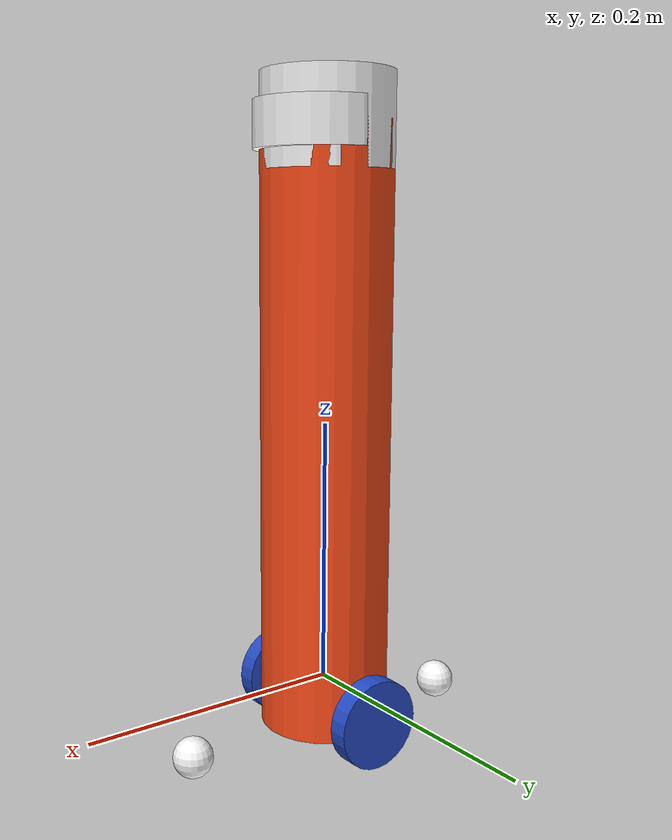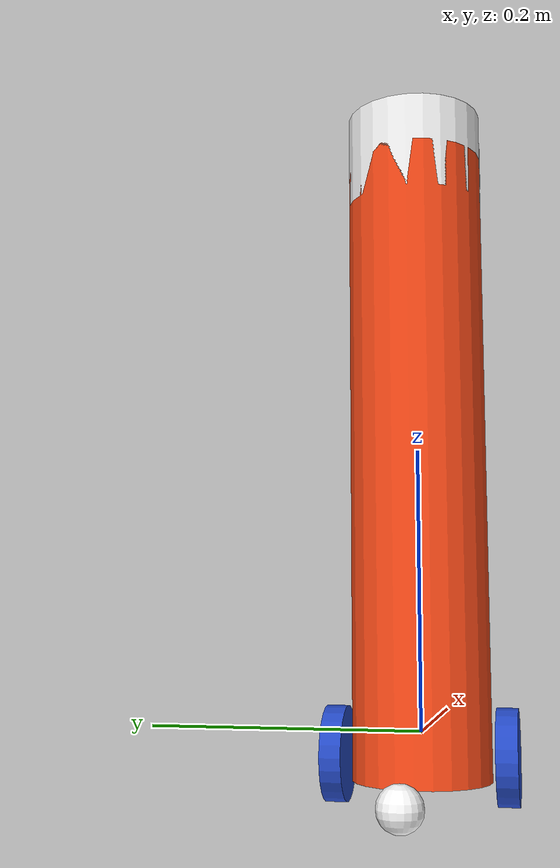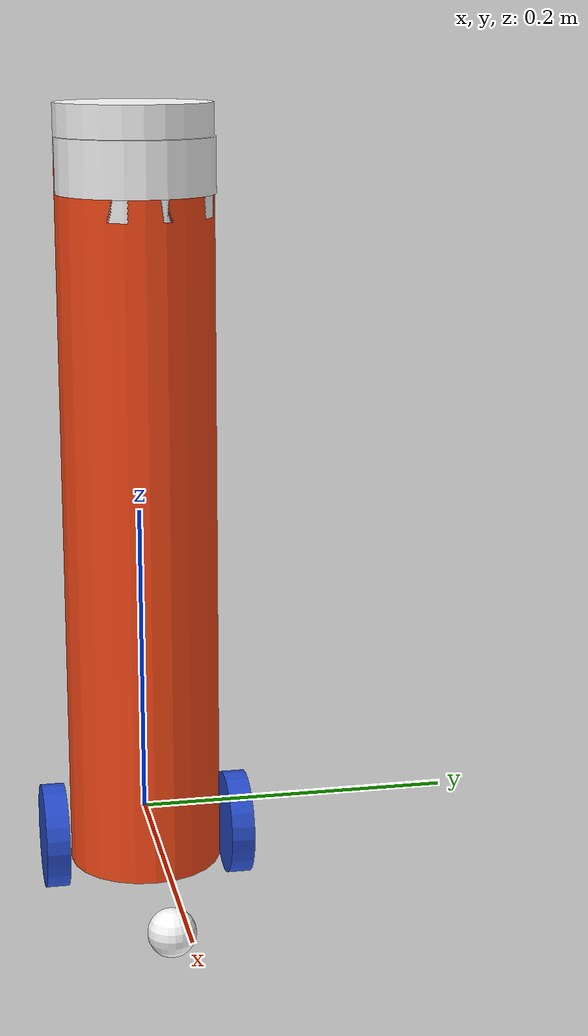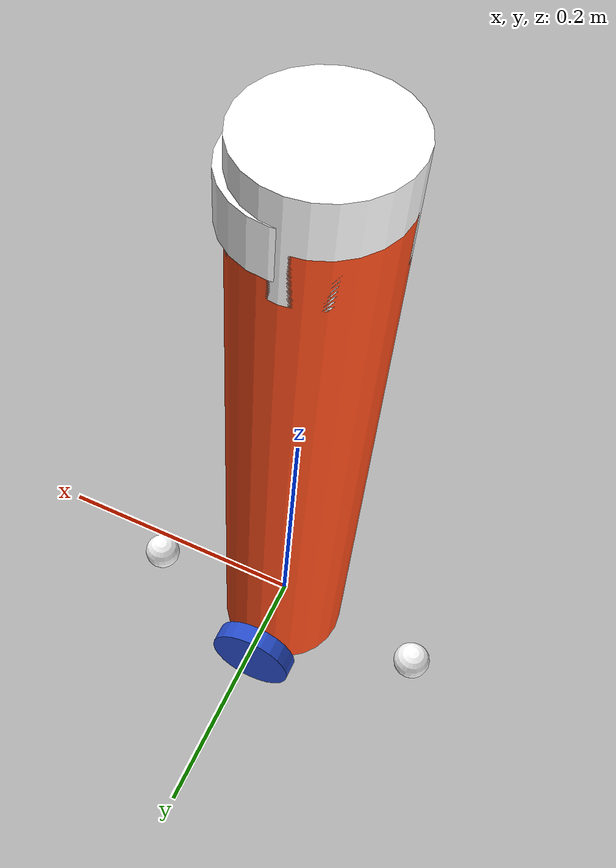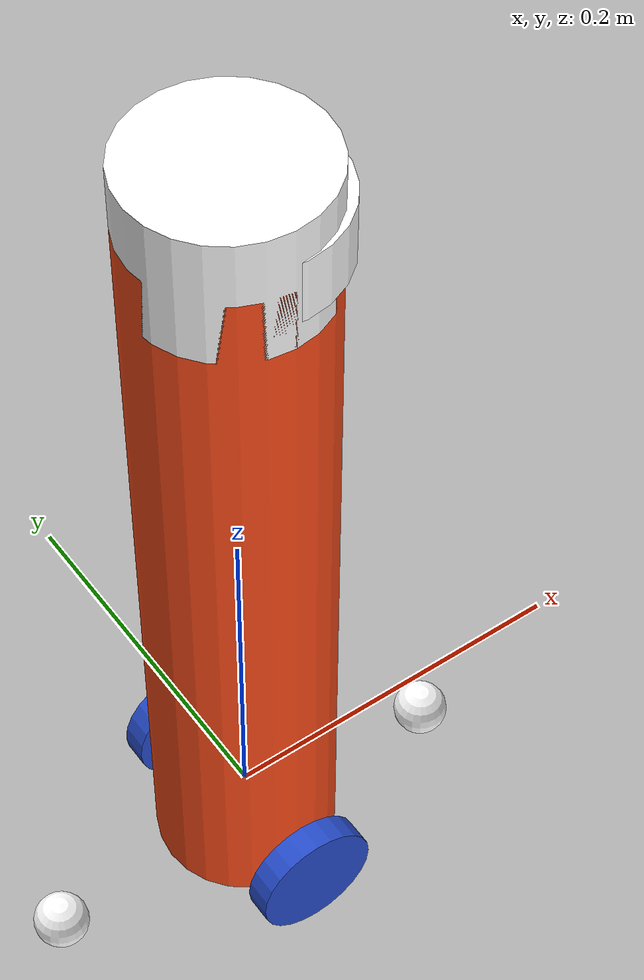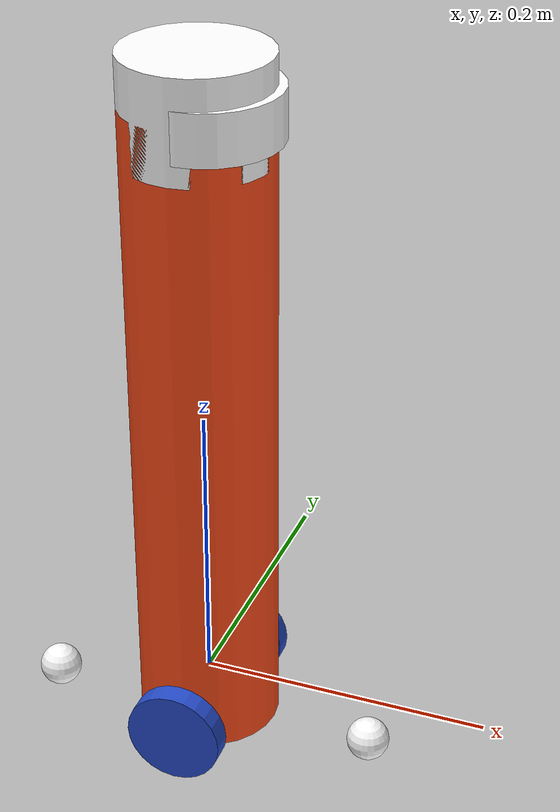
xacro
<?xml version="1.0"?>
<robot xmlns:xacro="http://www.ros.org/wiki/xacro"  name="robot">

    <xacro:arg name="use_ros2_control" default="true"/>
    <xacro:arg name="use_gaz_control" default="false"/>

    <xacro:arg name="sim_mode" default="false"/>
    <xacro:include filename="robot_core.xacro" />

    <xacro:if value="$(arg use_ros2_control)">
        <xacro:include filename="ros2_control.xacro" />
    </xacro:if>

    <xacro:if value="$(arg use_gaz_control)">
        <xacro:include filename="gazebo_control.xacro" />
    </xacro:if>

    <xacro:include filename="lidar.xacro" />
    <xacro:include filename="camera.xacro" />

</robot>

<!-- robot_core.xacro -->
<robot xmlns:xacro="http://ros.org/wiki/xacro">

    <xacro:include filename="inertial_macros.xacro"/>

    <xacro:property name="chassis_radius" value="0.049"/>
    <xacro:property name="chassis_height" value="0.453"/>

    <xacro:property name="wheel_radius" value="0.0335"/>
    <xacro:property name="wheel_thickness" value="0.015"/>
    <xacro:property name="wheel_offset_y" value="0.06"/>
    <xacro:property name="wheel_offset_z" value="-0.016"/>
    <xacro:property name="wheel_offset_x" value="0.065"/>
    <xacro:property name="wheel_mass" value="0.05"/>

    <xacro:property name="caster_wheel_mass" value="0.02"/>
    <xacro:property name="caster_wheel_radius" value="0.015"/>
    <xacro:property name="caster_wheel_offset_x" value="0.07"/>
    <xacro:property name="caster_wheel_offset_z" value="${wheel_offset_z - wheel_radius + caster_wheel_radius}"/>

    <material name="white">
        <color rgba="1 1 1 1"/>
    </material>

    <material name="orange">
        <color rgba="1 0.3 0.1 1"/>
    </material>

    <material name="blue">
        <color rgba="0.2 0.2 1 1"/>
    </material>

    <material name="black">
        <color rgba="0 0 0 1"/>
    </material>

    <!--Base Link-->

    <link name="base_link">
    </link>

    <!--Base Footprint Link-->

    <link name="base_footprint">
    </link>

    <joint name="base_joint" type="fixed">
        <parent link="base_link"/>
        <child link="base_footprint"/>
        <origin xyz="0.0 0.0 0.0" rpy="0 0 0"/>
    </joint>

    <!--Chassis Link-->

    <joint name="chassis_joint" type="fixed">
        <parent link="base_link"/>
        <child link="chassis"/>
        <origin xyz="${-chassis_radius} 0 ${-wheel_radius}"/>
    </joint>

    <link name="chassis">
        <visual>
            <origin xyz="0.049 0 ${chassis_height/2}"/>
            <geometry>
                <cylinder radius="${chassis_radius}" length="${chassis_height}"/>
            </geometry>
            <material name="orange"/>
        </visual>

        <collision>
            <origin xyz="0.049 0 ${chassis_height/2}"/>
            <geometry>
                <cylinder radius="${chassis_radius}" length="${chassis_height}"/>
            </geometry>
        </collision>
        <xacro:inertial_cylinder mass="1.0" length="${chassis_height}" radius="${chassis_radius}">
            <origin xyz="0.049 0 ${chassis_height/2}" rpy="0 0 0"/>
        </xacro:inertial_cylinder>
    </link>

    <gazebo reference="chassis">
        <material>Gazebo/Orange</material>
    </gazebo>

    <!--Left wheel link-->
    <joint name="left_wheel_joint" type="continuous">
        <parent link="base_link"/>
        <child link="left_wheel"/>
        <origin xyz="0 ${wheel_offset_y} ${wheel_offset_z}" rpy="-${pi/2} 0 0"/>
        <axis xyz="0 0 1"/>
    </joint>

    <link name="left_wheel">
        <visual>
            <geometry>
                <cylinder radius="${wheel_radius}" length="${wheel_thickness}"/>
                <material name="blue"/>
            </geometry>
        </visual>
        <surface>
            <friction>
            <ode>
                <mu>1.0</mu>
                <mu2>1.0</mu2>
            </ode>
            </friction>
            <contact>
            <ode>
                <min_depth>0.08</min_depth>
            </ode>
            </contact>
        </surface>
        <collision>
            <geometry>
                <sphere radius="${wheel_radius}"/>
            </geometry>
        </collision>

        <xacro:inertial_cylinder mass="${wheel_mass}" length="${wheel_thickness}" radius="${wheel_radius}">
            <origin xyz="0 0 0" rpy="0 0 0"/>
        </xacro:inertial_cylinder>
    </link>

    <gazebo reference="left_wheel">
        <material>Gazebo/Blue</material>
    </gazebo>

    <!--Right wheel link-->
    <joint name="right_wheel_joint" type="continuous">
        <parent link="base_link"/>
        <child link="right_wheel"/>
        <origin xyz="0 -${wheel_offset_y} ${wheel_offset_z}" rpy="${pi/2} 0 0"/>
        <axis xyz="0 0 -1"/>
    </joint>

    <link name="right_wheel">
        <visual>
            <geometry>
                <cylinder radius="${wheel_radius}" length="${wheel_thickness}"/>
                <material name="blue"/>
            </geometry>
        </visual>
        <surface>
            <friction>
                <ode>
                    <mu>1.0</mu>
                    <mu2>1.0</mu2>
                </ode>
            </friction>
            <contact>
                <ode>
                    <min_depth>0.08</min_depth>
                </ode>
            </contact>
        </surface>
        <collision>
            <geometry>
                <sphere radius="${wheel_radius}" />
            </geometry>
        </collision>

        <xacro:inertial_cylinder mass="${wheel_mass}" length="${wheel_thickness}" radius="${wheel_radius}">
            <origin xyz="0 0 0" rpy="0 0 0"/>
        </xacro:inertial_cylinder>
    </link>

    <gazebo reference="right_wheel">
        <material>Gazebo/Blue</material>
    </gazebo>

    <!--Front Caster wheel joint-->
    <joint name="front_caster_wheel_joint" type="fixed">
        <parent link="chassis"/>
        <child link="front_caster_wheel"/>
        <origin xyz="-${caster_wheel_offset_x} 0 0"/>
    </joint>

    <link name="front_caster_wheel">
        <visual>
            <geometry>
                <sphere radius="${caster_wheel_radius}"/>
            </geometry>
            <material name="white"/>
        </visual>

        <collision>
            <geometry>
                <sphere radius="${caster_wheel_radius}"/>
            </geometry>
        </collision>
        <contact>
            <ode>
                <min_depth>0.1</min_depth>
            </ode>
        </contact>
        <xacro:inertial_sphere mass="${caster_wheel_mass}" radius="${caster_wheel_radius}">
            <origin xyz="0 0 0" rpy="0 0 0"/>
        </xacro:inertial_sphere>
    </link>

    <gazebo reference="front_caster_wheel">
        <material>Gazebo/White</material>
        <mu1 value="0.001"/>
        <mu2 value="0.001"/>
    </gazebo>

    <!--Back Caster wheel joint-->
    <joint name="back_caster_wheel_joint" type="fixed">
        <parent link="chassis"/>
        <child link="back_caster_wheel"/>
        <origin xyz="${(2*chassis_radius) + caster_wheel_offset_x} 0 0"/>
    </joint>

    <link name="back_caster_wheel">
        <visual>
            <geometry>
                <sphere radius="${caster_wheel_radius}"/>
            </geometry>
            <material name="white"/>
        </visual>
        <contact>
            <ode>
                <min_depth>0.1</min_depth>
            </ode>
        </contact>
        <collision>
            <geometry>
                <sphere radius="${caster_wheel_radius}"/>
            </geometry>
        </collision>

        <xacro:inertial_sphere mass="${caster_wheel_mass}" radius="${caster_wheel_radius}">
            <origin xyz="0 0 0" rpy="0 0 0"/>
        </xacro:inertial_sphere>
    </link>

    <gazebo reference="back_caster_wheel">
        <material>Gazebo/White</material>
        <mu1 value="0.001"/>
        <mu2 value="0.001"/>
    </gazebo>
</robot>

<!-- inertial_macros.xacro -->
<robot xmlns:xacro="http://www.ros.org/wiki/xacro">

<xacro:macro name="inertial_sphere" params="mass radius *origin">
    <inertial>
        <xacro:insert_block name="origin"/>
        <mass value="${mass}"/>
        <inertia ixx="${(2/5) * mass * (radius*radius)}" ixy="0.0" ixz="0.0"
                iyy="${(2/5) * mass * (radius*radius)}" iyz="0.0"
                izz="${(2/5) * mass * (radius*radius)}"/>
    </inertial>
</xacro:macro>

<xacro:macro name="inertial_cylinder" params="mass length radius *origin">
    <inertial>
        <xacro:insert_block name="origin"/>
        <mass value="${mass}"/>
        <inertia ixx="${(1/12) * mass * (3*radius*radius + length*length)}" ixy="0.0" ixz="0.0"
                iyy="${(1/12) * mass * (3*radius*radius + length*length)}" iyz="0.0"
                izz="${(1/2) * mass * (radius*radius)}"/>
    </inertial>
</xacro:macro>

</robot>

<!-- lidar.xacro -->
<robot xmlns:xacro="http://ros.org/wiki/xacro">
    <xacro:property name="chassis_radius" value="0.049"/>
    <xacro:property name="chassis_height" value="0.453"/>
    <xacro:property name="lidar_height" value="0.068"/>

    <joint name="laser_joint" type="fixed">
        <parent link="chassis"/>
        <child link="laser_frame"/>
        <origin xyz="${chassis_radius} 0 ${chassis_height}" rpy="0 0 0"/>
    </joint>

    <link name="laser_frame">
        <visual>
            <geometry>
                <cylinder radius="${chassis_radius}" length="${lidar_height}"/>
            </geometry>
            <material name="white"/>
        </visual>

        <collision>
            <origin xyz="0 0 0"/>
            <geometry>
                <cylinder radius="${chassis_radius}" length="${lidar_height}"/>
            </geometry>
        </collision>
        <xacro:inertial_cylinder mass="0.05" length="${lidar_height}" radius="${chassis_radius}">
            <origin xyz="0 0 0" rpy="0 0 0"/>
        </xacro:inertial_cylinder>
    </link>

    <gazebo reference="laser_frame">
        <sensor name="laser" type="ray">
            <pose> 0 0 0 0 0 0 </pose>
            <visualize>true</visualize>
            <update_rate>15</update_rate>
            <ray>
                <scan>
                    <horizontal>
                        <samples>360</samples>
                        <min_angle>-3.14</min_angle>
                        <max_angle>3.14</max_angle>
                    </horizontal>
                </scan>
                <range>
                    <min>0.3</min>
                    <max>8</max>
                </range>
            </ray>

            <plugin name="laser_controller" filename="libgazebo_ros_ray_sensor.so">
                <ros>
                    <argument>--ros-args --remap /laser_controller/out:=scan</argument>
                </ros>
                <output_type>sensor_msgs/LaserScan</output_type>
                <frame_name>laser_frame</frame_name>
            </plugin>

        </sensor>
    </gazebo>

</robot>

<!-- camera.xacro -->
<robot xmlns:xacro="http://ros.org/wiki/xacro">
    <xacro:property name="chassis_radius" value="0.049"/>
    <xacro:property name="chassis_height" value="0.453"/>
    <xacro:property name="picam_height" value="0.034"/>

    <joint name="picam_joint" type="fixed">
        <parent link="chassis"/>
        <child link="picam_link"/>
        <origin xyz="0.055 0 0.450" rpy="0 0 0"/>
    </joint>

    <link name="picam_link">
        <visual>
            <geometry>
                <cylinder radius="${chassis_radius}" length="${picam_height}"/>
            </geometry>
            <material name="white"/>
        </visual>

        <collision>
            <origin xyz="0 0 0"/>
            <geometry>
                <cylinder radius="${chassis_radius}" length="${picam_height}"/>
            </geometry>
        </collision>
        <xacro:inertial_cylinder mass="0.05" length="${picam_height}" radius="${chassis_radius}">
            <origin xyz="0 0 0" rpy="0 0 0"/>
        </xacro:inertial_cylinder>
    </link>

    <joint name="picam_optical_joint" type="fixed">
        <parent link="picam_link"/>
        <child link="picam_link_optical"/>
        <origin xyz="0 0 0" rpy="${-pi/2} 0 ${-pi/2}"/>
    </joint>
    <link name="picam_link_optical"></link>

    <gazebo reference="picam_link">
        <sensor name="picam" type="camera">
            <pose> 0 0 0 0 0 0 </pose>
            <visualize>true</visualize>
            <update_rate>15</update_rate>
            <camera>
                <horizontal_fov>1.1</horizontal_fov>
                <image>
                    <format>R8G8B8</format>
                    <width>640</width>
                    <height>480</height>
                </image>
                <clip>
                    <near>0.05</near>
                    <far>8.0</far>
                </clip>
            </camera>

            <plugin name="picam_controller" filename="libgazebo_ros_camera.so">
                <frame_name>picam_link_optical</frame_name>
            </plugin>

        </sensor>
    </gazebo>

</robot>
